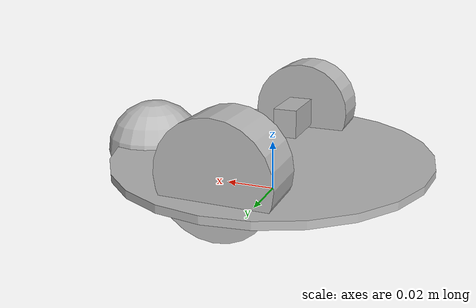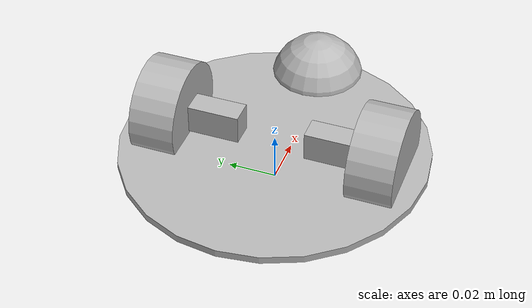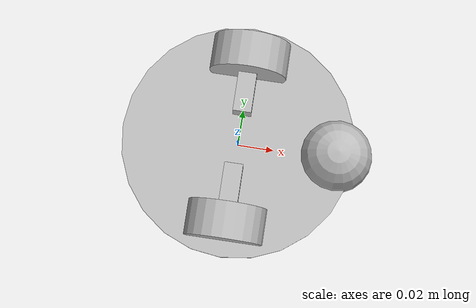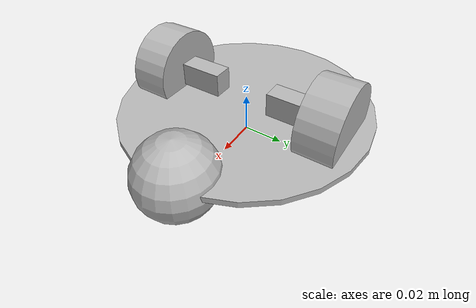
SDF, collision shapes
<?xml version="1.0"?>
<sdf version="1.8">
  <model name="round_robot">
    <pose>0 0 0.015 0 0 0</pose>
    <static>true</static>
    <link name="chassis">
      <!-- chassis link contains caster and two motors-->
      <inertial>
        <mass>0.037</mass>
        <inertia>
          <ixx>0.00014922099999999997</ixx>
          <ixy>0</ixy>
          <ixz>0</ixz>
          <iyy>0.00014922099999999997</iyy>
          <iyz>0</iyz>
          <izz>0.0002983865</izz>
        </inertia>
      </inertial>
      <collision name="chassis_collision">
        <geometry>
          <cylinder>
            <radius>0.0635</radius>
            <length>0.003</length>
          </cylinder>
        </geometry>
      </collision>
      <visual name="chassis_visual">
        <geometry>
          <cylinder>
            <radius>0.0635</radius>
            <length>0.003</length>
          </cylinder>
        </geometry>
      </visual>
      <!-- Attach caster-->
      <inertial>
        <pose>0.054 0 -0.0053375 0 3.141592653589793 1.5707963267948966</pose> <!-- only calculate metal ball inertia-->
        <mass>0.004</mass>
        <inertia>
          <ixx>0.00000003629025</ixx>
          <ixy>0</ixy>
          <ixz>0</ixz>
          <iyy>0.00000003629025</iyy>
          <iyz>0</iyz>
          <izz>0.00000003629025</izz>
        </inertia>
      </inertial>
      <collision name="caster_collision">
        <pose>0.054 0 -0.003 0 3.141592653589793 1.5707963267948966</pose>
        <geometry>
          <sphere>
            <radius>.02</radius>
          </sphere>
        </geometry>
        <surface>
          <friction>
            <bullet>
              <friction>0</friction>
              <friction2>0</friction2>
            </bullet>
          </friction>
        </surface>
      </collision>
      <visual name="caster_visual">
        <pose>0.054 0 -0.003 0 3.141592653589793 1.5707963267948966</pose>
        <geometry>
          <mesh>
            <scale>1 1 1</scale>
            <uri>meshes/pololu-ball-caster-with-0-375in-ball.dae</uri>
          </mesh>
        </geometry>
      </visual>
      <!-- Attach left motor-->
      <inertial>
        <pose>0 0.033 0.00875 1.5707963267948966 0 1.5707963267948966</pose>
        <mass>0.0095</mass>
        <inertia>
          <ixx>0.0000004916666667</ixx>
          <ixy>0</ixy>
          <ixz>0</ixz>
          <iyy>0.0000006143333333</iyy>
          <iyz>0</iyz>
          <izz>0.0000001931666667</izz>
        </inertia>
      </inertial>
      <collision name="leftmotor_collision">
        <pose>0 0.033 0.00875 1.5707963267948966 0 1.5707963267948966</pose>
        <geometry>
          <box>
            <size>0.038 0.012 0.01</size>
          </box>
        </geometry>
      </collision>
      <visual name="leftmotor_visual">
        <pose>0 0.033 0.00875 1.5707963267948966 0 1.5707963267948966</pose>
        <geometry>
          <mesh>
            <scale>1 1 1</scale>
            <uri>meshes/micro-metal-gearmotor-with-1086-bracket.dae</uri>
          </mesh>
        </geometry>
      </visual>
      <!-- Attach right motor-->
      <inertial>
        <pose>0 -0.033 0.00875 1.5707963267948966 0 -1.5707963267948966</pose>
        <mass>0.0095</mass>
        <inertia>
          <ixx>0.0000004916666667</ixx>
          <ixy>0</ixy>
          <ixz>0</ixz>
          <iyy>0.0000006143333333</iyy>
          <iyz>0</iyz>
          <izz>0.0000001931666667</izz>
        </inertia>
      </inertial>
      <collision name="rightmotor_collision">
        <pose>0 -0.033 0.00875 1.5707963267948966 0 -1.5707963267948966</pose>
        <geometry>
          <box>
            <size>0.038 0.012 0.01</size>
          </box>
        </geometry>
      </collision>
      <visual name="rightmotor_visual">
        <pose>0 -0.033 0.00875 1.5707963267948966 0 -1.5707963267948966</pose>
        <geometry>
          <mesh>
            <scale>1 1 1</scale>
            <uri>meshes/micro-metal-gearmotor-with-1086-bracket.dae</uri>
          </mesh>
        </geometry>
      </visual>
    </link>

    <link name="left_wheel">
      <inertial>
        <pose>0 0.045 0.00875 -1.5707963267948966 0 0</pose>
        <mass>0.019</mass>
        <inertia>
          <ixx>0.0000026663333333</ixx>
          <ixy>0</ixy>
          <ixz>0</ixz>
          <iyy>0.0000026663333333</iyy>
          <iyz>0</iyz>
          <izz>0.0000041895</izz>
        </inertia>
      </inertial>
      <collision>
        <pose>0 0.045 0.00875 -1.5707963267948966 0 0</pose>
        <geometry>
          <cylinder>
            <length>0.019</length>
            <radius>0.021</radius>
          </cylinder>
        </geometry>
      </collision>
      <visual>
        <pose>0 0.045 0.00875 -1.5707963267948966 0 0</pose>
        <geometry>
          <mesh>
            <scale>1 1 1</scale>
            <uri>meshes/pololu-wheel-42x19mm.dae</uri>
          </mesh>
        </geometry>
      </visual>
    </link>

    <joint type="continuous" name="left_wheel_hinge">
      <child>left_wheel</child>
      <parent>chassis</parent>
      <axis>
        <xyz>0 1 0</xyz>
      </axis>
    </joint>

    <link name="right_wheel">
      <inertial>
        <pose>0 -0.045 0.00875 1.5707963267948966 0 0</pose>
        <mass>0.019</mass>
        <inertia>
          <ixx>0.0000026663333333</ixx>
          <ixy>0</ixy>
          <ixz>0</ixz>
          <iyy>0.0000026663333333</iyy>
          <iyz>0</iyz>
          <izz>0.0000041895</izz>
        </inertia>
      </inertial>
      <collision>
        <pose>0 -0.045 0.00875 1.5707963267948966 0 0</pose>
        <geometry>
          <cylinder>
            <length>0.019</length>
            <radius>0.021</radius>
          </cylinder>
        </geometry>
      </collision>
      <visual>
        <pose>0 -0.045 0.00875 1.5707963267948966 0 0</pose>
        <geometry>
          <mesh>
            <scale>1 1 1</scale>
            <uri>meshes/pololu-wheel-42x19mm.dae</uri>
          </mesh>
        </geometry>
      </visual>
    </link>
    <joint type="continuous" name="right_wheel_hinge">
      <child>right_wheel</child>
      <parent>chassis</parent>
      <axis>
        <xyz>0 1 0</xyz>
      </axis>
    </joint>
  </model>
</sdf>
